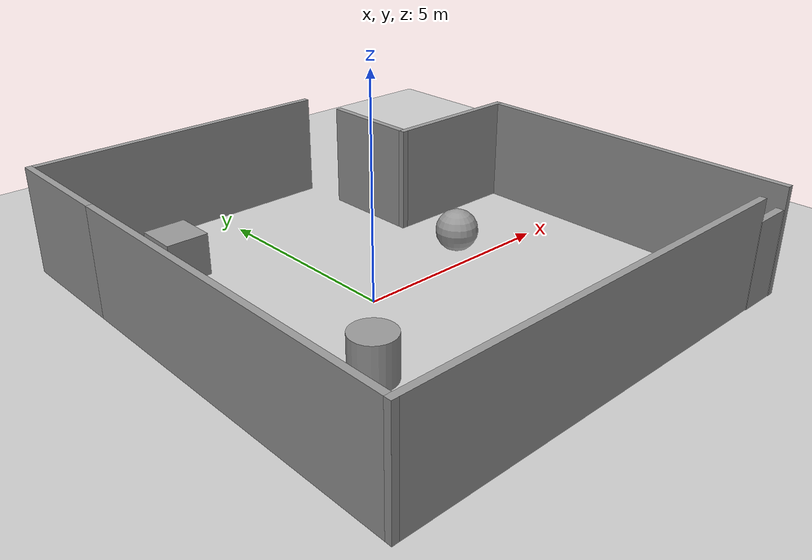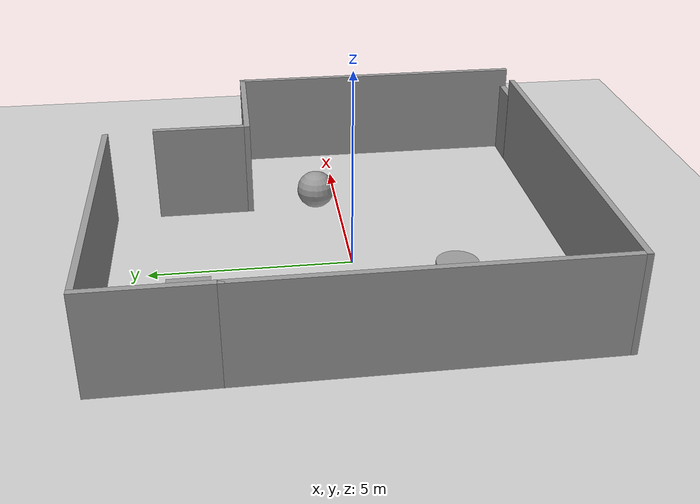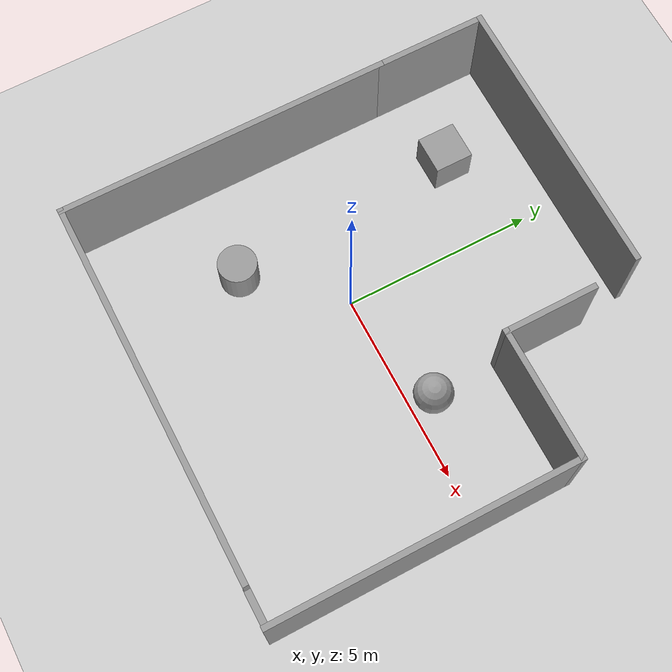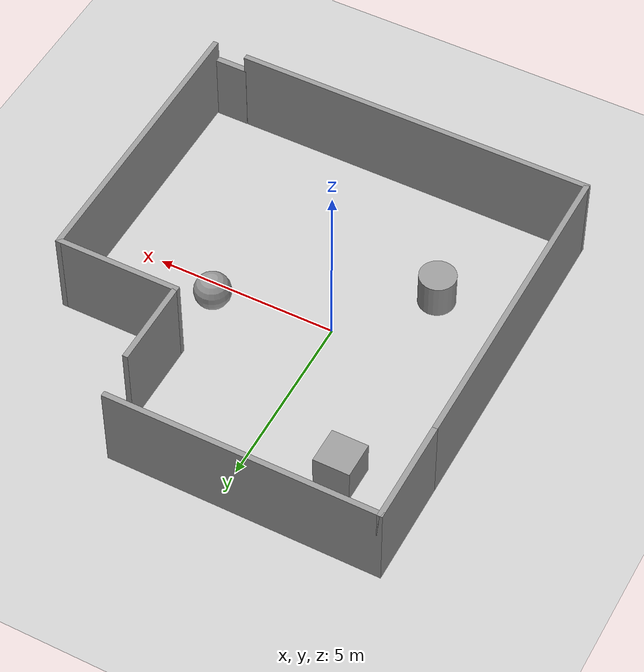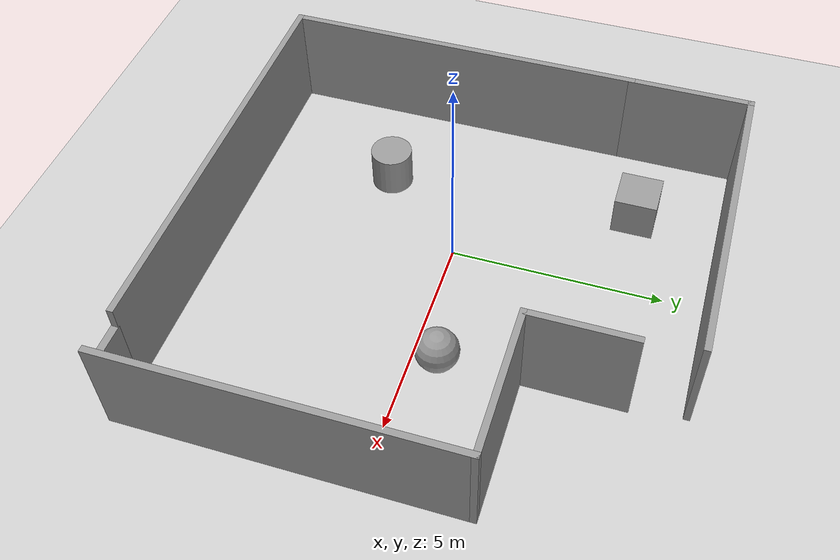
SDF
<sdf version="1.6">
 <world name="default">
  <light name="sun" type="directional">
   <pose>0 0 10 0 -0 0</pose>
   <diffuse>0.8 0.8 0.8 1</diffuse>
   <specular>0.1 0.1 0.1 1</specular>
   <attenuation>
    <range>1000</range>
    <constant>0.9</constant>
    <linear>0.01</linear>
    <quadratic>0.001</quadratic>
   </attenuation>
   <direction>-0.5 0.5 -1</direction>
  </light>
  <model name="ground_plane">
   <static>1</static>
   <link name="link">
    <collision name="collision">
     <geometry><plane><normal>0 0 1</normal><size>100 100</size></plane></geometry>
     <surface><friction><ode><mu>100</mu><mu2>50</mu2></ode></friction></surface>
    </collision>
    <visual name="visual">
     <cast_shadows>0</cast_shadows>
     <geometry><plane><normal>0 0 1</normal><size>100 100</size></plane></geometry>
     <material>
      <script><uri>file://media/materials/scripts/gazebo.material</uri><name>Gazebo/Grey</name></script>
     </material>
    </visual>
   </link>
  </model>
  <gravity>0 0 -9.8</gravity>
  <magnetic_field>6e-06 2.3e-05 -4.2e-05</magnetic_field>
  <atmosphere type="adiabatic"/>
  <physics name="default_physics" default="0" type="ode">
   <max_step_size>0.001</max_step_size>
   <real_time_factor>1</real_time_factor>
   <real_time_update_rate>1000</real_time_update_rate>
  </physics>
  <scene><ambient>0.4 0.4 0.4 1</ambient><background>0.7 0.7 0.7 1</background><shadows>1</shadows></scene>
  <spherical_coordinates>
   <surface_model>EARTH_WGS84</surface_model>
   <latitude_deg>0</latitude_deg>
   <longitude_deg>0</longitude_deg>
   <elevation>0</elevation>
   <heading_deg>0</heading_deg>
  </spherical_coordinates>
  <model name="Untitled">
   <pose>0.994049 0.270258 0 0 -0 0</pose>
   <link name="Door_0">
    <collision name="Door_0_Collision">
     <geometry><box><size>0.9 0.17 2</size></box></geometry>
     <pose>0 0 1 0 -0 0</pose>
    </collision>
    <visual name="Door_0_Visual">
     <pose>0 0 1 0 -0 0</pose>
     <geometry><box><size>0.9 0.17 2</size></box></geometry>
     <material>
      <script><uri>file://media/materials/scripts/gazebo.material</uri><name>Gazebo/Grey</name></script>
     </material>
    </visual>
    <pose>4.89566 -5.71757 0 0 -0 0</pose>
   </link>
   <link name="Wall_0">
    <collision name="Wall_0_Collision">
     <geometry><box><size>10 0.15 2.5</size></box></geometry>
     <pose>0 0 1.25 0 -0 0</pose>
    </collision>
    <visual name="Wall_0_Visual">
     <pose>0 0 1.25 0 -0 0</pose>
     <geometry><box><size>10 0.15 2.5</size></box></geometry>
     <material>
      <script><uri>file://media/materials/scripts/gazebo.material</uri><name>Gazebo/Grey</name></script>
      <ambient>1 1 1 1</ambient>
     </material>
    </visual>
    <pose>-0.513723 -5.71232 0 0 -0 3.14159</pose>
   </link>
   <link name="Wall_14">
    <collision name="Wall_14_Collision">
     <geometry><box><size>3 0.15 2.5</size></box></geometry>
     <pose>0 0 1.25 0 -0 0</pose>
    </collision>
    <visual name="Wall_14_Visual">
     <pose>0 0 1.25 0 -0 0</pose>
     <geometry><box><size>3 0.15 2.5</size></box></geometry>
     <material>
      <script><uri>file://media/materials/scripts/gazebo.material</uri><name>Gazebo/Grey</name></script>
      <ambient>1 1 1 1</ambient>
     </material>
    </visual>
    <pose>-5.43872 4.31268 0 0 -0 1.5708</pose>
   </link>
   <link name="Wall_16">
    <collision name="Wall_16_Collision">
     <geometry><box><size>7.5 0.15 2.5</size></box></geometry>
     <pose>0 0 1.25 0 -0 0</pose>
    </collision>
    <visual name="Wall_16_Visual">
     <pose>0 0 1.25 0 -0 0</pose>
     <geometry><box><size>7.5 0.15 2.5</size></box></geometry>
     <material>
      <script><uri>file://media/materials/scripts/gazebo.material</uri><name>Gazebo/Grey</name></script>
      <ambient>1 1 1 1</ambient>
     </material>
    </visual>
    <pose>-1.76372 5.73768 0 0 -0 0</pose>
   </link>
   <link name="Wall_2">
    <collision name="Wall_2_Collision">
     <geometry><box><size>8.75 0.15 2.5</size></box></geometry>
     <pose>0 0 1.25 0 -0 0</pose>
    </collision>
    <visual name="Wall_2_Visual">
     <pose>0 0 1.25 0 -0 0</pose>
     <geometry><box><size>8.75 0.15 2.5</size></box></geometry>
     <material>
      <script><uri>file://media/materials/scripts/gazebo.material</uri><name>Gazebo/Grey</name></script>
      <ambient>1 1 1 1</ambient>
     </material>
    </visual>
    <pose>-5.43872 -1.41232 0 0 -0 1.5708</pose>
   </link>
   <link name="Wall_4">
    <collision name="Wall_4_Collision">
     <geometry><box><size>8 0.15 2.5</size></box></geometry>
     <pose>0 0 1.25 0 -0 0</pose>
    </collision>
    <visual name="Wall_4_Visual">
     <pose>0 0 1.25 0 -0 0</pose>
     <geometry><box><size>8 0.15 2.5</size></box></geometry>
     <material>
      <script><uri>file://media/materials/scripts/gazebo.material</uri><name>Gazebo/Grey</name></script>
      <ambient>1 1 1 1</ambient>
     </material>
    </visual>
    <pose>5.43872 -1.81268 0 0 -0 1.5708</pose>
   </link>
   <link name="Wall_5">
    <collision name="Wall_5_Collision">
     <geometry><box><size>3.5 0.15 2.5</size></box></geometry>
     <pose>0 0 1.25 0 -0 0</pose>
    </collision>
    <visual name="Wall_5_Visual">
     <pose>0 0 1.25 0 -0 0</pose>
     <geometry><box><size>3.5 0.15 2.5</size></box></geometry>
     <material>
      <script><uri>file://media/materials/scripts/gazebo.material</uri><name>Gazebo/Grey</name></script>
      <ambient>1 1 1 1</ambient>
     </material>
    </visual>
    <pose>3.76372 2.11232 0 0 -0 3.14159</pose>
   </link>
   <link name="Wall_8">
    <collision name="Wall_8_Collision">
     <geometry><box><size>2.5 0.15 2.5</size></box></geometry>
     <pose>0 0 1.25 0 -0 0</pose>
    </collision>
    <visual name="Wall_8_Visual">
     <pose>0 0 1.25 0 -0 0</pose>
     <geometry><box><size>2.5 0.15 2.5</size></box></geometry>
     <material>
      <script><uri>file://media/materials/scripts/gazebo.material</uri><name>Gazebo/Grey</name></script>
      <ambient>1 1 1 1</ambient>
     </material>
    </visual>
    <pose>2.08872 3.28732 0 0 -0 1.5708</pose>
   </link>
   <static>1</static>
  </model>
  <model name="unit_box_0">
   <pose>-2.31614 3.92701 0.499995 0 1e-05 0</pose>
   <link name="link">
    <inertial>
     <mass>1</mass>
     <inertia>
      <ixx>0.166667</ixx>
      <ixy>0</ixy>
      <ixz>0</ixz>
      <iyy>0.166667</iyy>
      <iyz>0</iyz>
      <izz>0.166667</izz>
     </inertia>
    </inertial>
    <collision name="collision"><geometry><box><size>1 1 1</size></box></geometry></collision>
    <visual name="visual">
     <geometry><box><size>1 1 1</size></box></geometry>
     <material>
      <script><name>Gazebo/Grey</name><uri>file://media/materials/scripts/gazebo.material</uri></script>
     </material>
    </visual>
   </link>
  </model>
  <model name="unit_sphere_0">
   <pose>3.12968 0.593828 0.5 0 -0 0</pose>
   <link name="link">
    <inertial>
     <mass>1</mass>
     <inertia><ixx>0.1</ixx><ixy>0</ixy><ixz>0</ixz><iyy>0.1</iyy><iyz>0</iyz><izz>0.1</izz></inertia>
    </inertial>
    <collision name="collision"><geometry><sphere><radius>0.5</radius></sphere></geometry></collision>
    <visual name="visual">
     <geometry><sphere><radius>0.5</radius></sphere></geometry>
     <material>
      <script><name>Gazebo/Grey</name><uri>file://media/materials/scripts/gazebo.material</uri></script>
     </material>
    </visual>
   </link>
  </model>
  <model name="unit_cylinder_0">
   <pose>-1.90719 -2.16496 0.499997 3e-06 4e-06 -0</pose>
   <link name="link">
    <inertial>
     <mass>1</mass>
     <inertia><ixx>0.145833</ixx><ixy>0</ixy><ixz>0</ixz><iyy>0.145833</iyy><iyz>0</iyz><izz>0.125</izz></inertia>
    </inertial>
    <collision name="collision">
     <geometry><cylinder><radius>0.5</radius><length>1</length></cylinder></geometry>
    </collision>
    <visual name="visual">
     <geometry><cylinder><radius>0.5</radius><length>1</length></cylinder></geometry>
     <material>
      <script><name>Gazebo/Grey</name><uri>file://media/materials/scripts/gazebo.material</uri></script>
     </material>
    </visual>
   </link>
  </model>
  <light name="user_spot_light_0" type="spot">
   <pose>4.5026 -1.07076 1 0 -0 0</pose>
   <diffuse>0.5 0.5 0.5 1</diffuse>
   <specular>0.1 0.1 0.1 1</specular>
   <direction>0 0 -1</direction>
   <attenuation>
    <range>20</range>
    <constant>0.5</constant>
    <linear>0.01</linear>
    <quadratic>0.001</quadratic>
   </attenuation>
   <cast_shadows>0</cast_shadows>
   <spot><inner_angle>0.6</inner_angle><outer_angle>1</outer_angle><falloff>1</falloff></spot>
  </light>
 </world>
</sdf>
